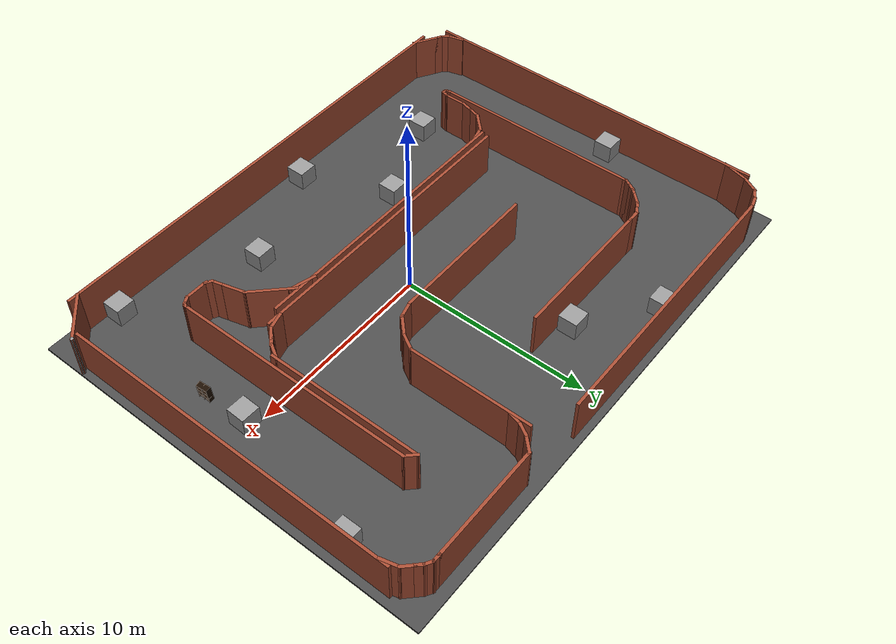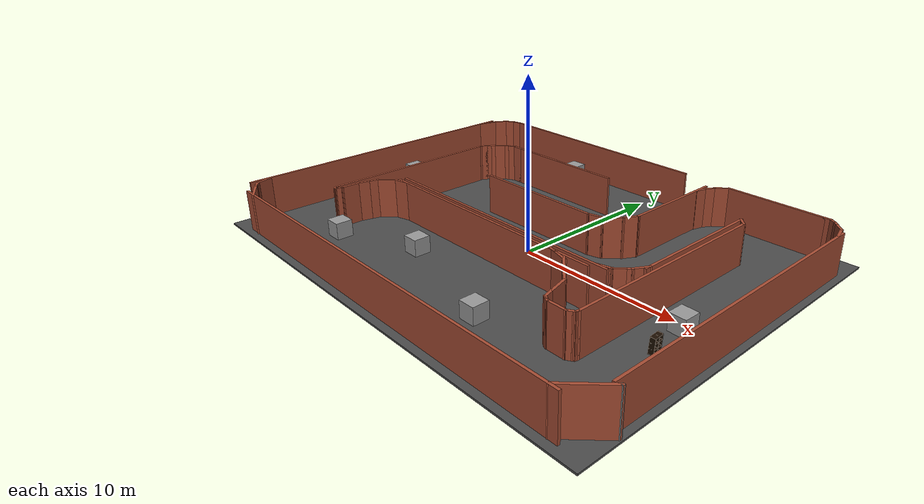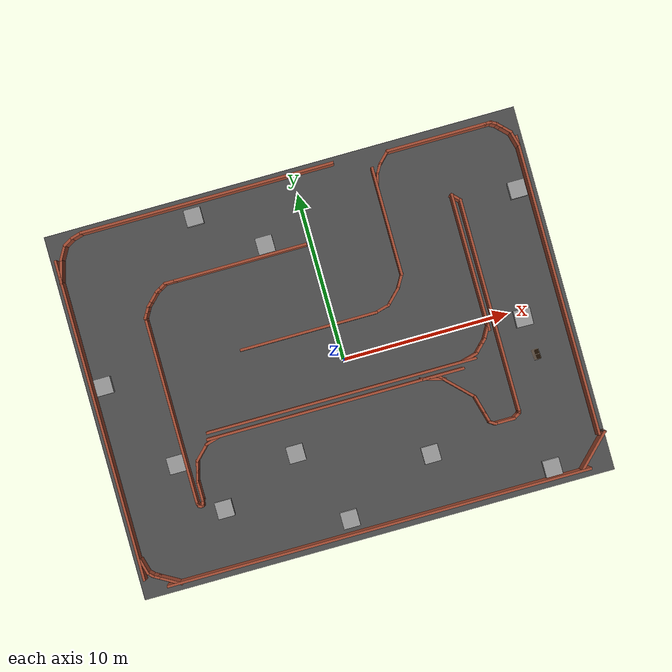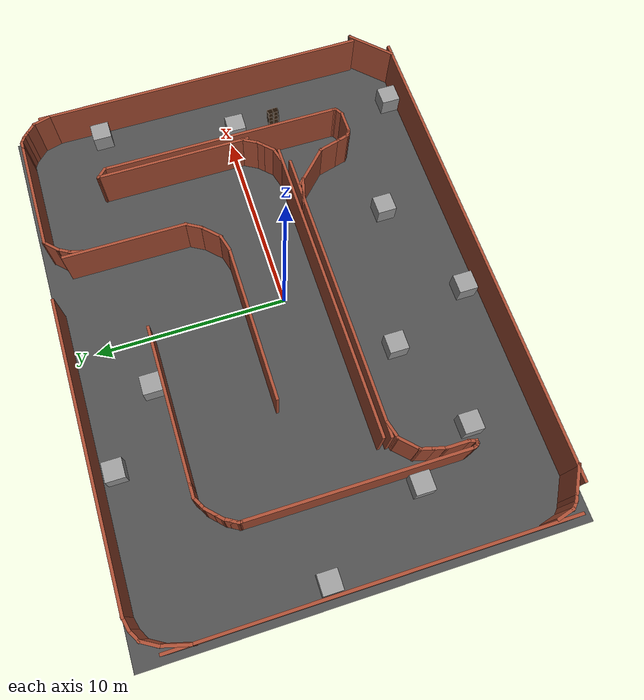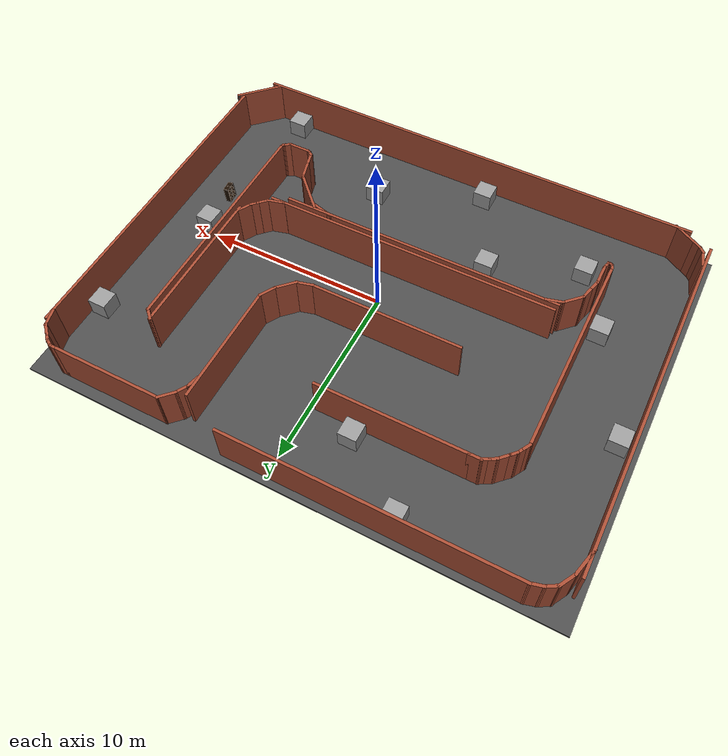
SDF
<sdf version="1.7">
 <world name="default">
  <light name="sun" type="directional">
   <pose>0 0 100 0 -0 0</pose>
   <diffuse>0.8 0.8 0.8 1</diffuse>
   <specular>0.1 0.1 0.1 1</specular>
   <attenuation>
    <range>1000</range>
    <constant>0.9</constant>
    <linear>0.01</linear>
    <quadratic>0.001</quadratic>
   </attenuation>
   <direction>-0.5 0.5 -1</direction>
   <spot><inner_angle>0</inner_angle><outer_angle>0</outer_angle><falloff>0</falloff></spot>
  </light>
  <gravity>0 0 -9.8</gravity>
  <magnetic_field>6e-06 2.3e-05 -4.2e-05</magnetic_field>
  <atmosphere type="adiabatic"/>
  <physics name="default_physics" default="0" type="ode">
   <max_step_size>0.001</max_step_size>
   <real_time_factor>1</real_time_factor>
   <real_time_update_rate>1000</real_time_update_rate>
  </physics>
  <scene><ambient>0.4 0.4 0.4 1</ambient><background>0.7 0.7 0.7 1</background><shadows>1</shadows></scene>
  <spherical_coordinates>
   <surface_model>EARTH_WGS84</surface_model>
   <latitude_deg>0</latitude_deg>
   <longitude_deg>0</longitude_deg>
   <elevation>0</elevation>
   <heading_deg>0</heading_deg>
  </spherical_coordinates>
  <model name="asphalt_plane">
   <static>1</static>
   <link name="link">
    <collision name="collision"><geometry><box><size>28.54 22.04 0.1</size></box></geometry></collision>
    <visual name="visual">
     <cast_shadows>0</cast_shadows>
     <geometry><box><size>28.54 22.04 0.1</size></box></geometry>
     <material>
      <script>
       <uri>model://asphalt_plane/materials/scripts</uri>
       <uri>model://asphalt_plane/materials/textures</uri>
       <name>vrc/asphalt</name>
      </script>
     </material>
    </visual>
   </link>
   <pose>-0.719505 0.551979 0 0 -0 0</pose>
  </model>
  <audio><device>default</device></audio>
  <model name="unit_box_clone">
   <pose>-9.02994 -6.55582 0.55 0 -0 7.1e-05</pose>
   <link name="link">
    <inertial>
     <mass>1</mass>
     <inertia>
      <ixx>0.166667</ixx>
      <ixy>0</ixy>
      <ixz>0</ixz>
      <iyy>0.166667</iyy>
      <iyz>0</iyz>
      <izz>0.166667</izz>
     </inertia>
    </inertial>
    <collision name="collision"><geometry><box><size>1 1 1</size></box></geometry></collision>
    <visual name="visual">
     <geometry><box><size>1 1 1</size></box></geometry>
     <material>
      <script><name>Gazebo/Grey</name><uri>file://media/materials/scripts/gazebo.material</uri></script>
     </material>
    </visual>
   </link>
  </model>
  <model name="unit_box_clone_0">
   <pose>-2.13905 -9.08251 0.55 0 -0 5.4e-05</pose>
   <link name="link">
    <inertial>
     <mass>1</mass>
     <inertia>
      <ixx>0.166667</ixx>
      <ixy>0</ixy>
      <ixz>0</ixz>
      <iyy>0.166667</iyy>
      <iyz>0</iyz>
      <izz>0.166667</izz>
     </inertia>
    </inertial>
    <collision name="collision"><geometry><box><size>1 1 1</size></box></geometry></collision>
    <visual name="visual">
     <geometry><box><size>1 1 1</size></box></geometry>
     <material>
      <script><name>Gazebo/Grey</name><uri>file://media/materials/scripts/gazebo.material</uri></script>
     </material>
    </visual>
   </link>
  </model>
  <model name="unit_box_clone_2">
   <pose>10.7393 -0.480041 0.549995 0 -1e-05 -0.029738</pose>
   <link name="link">
    <inertial>
     <mass>1</mass>
     <inertia>
      <ixx>0.166667</ixx>
      <ixy>0</ixy>
      <ixz>0</ixz>
      <iyy>0.166667</iyy>
      <iyz>0</iyz>
      <izz>0.166667</izz>
     </inertia>
    </inertial>
    <collision name="collision"><geometry><box><size>1 1 1</size></box></geometry></collision>
    <visual name="visual">
     <geometry><box><size>1 1 1</size></box></geometry>
     <material>
      <script><name>Gazebo/Grey</name><uri>file://media/materials/scripts/gazebo.material</uri></script>
     </material>
    </visual>
   </link>
  </model>
  <model name="unit_box_clone_5">
   <pose>10.0295 -9.35501 0.550002 -4e-06 -0 1e-05</pose>
   <link name="link">
    <inertial>
     <mass>1</mass>
     <inertia>
      <ixx>0.166667</ixx>
      <ixy>0</ixy>
      <ixz>0</ixz>
      <iyy>0.166667</iyy>
      <iyz>0</iyz>
      <izz>0.166667</izz>
     </inertia>
    </inertial>
    <collision name="collision"><geometry><box><size>1 1 1</size></box></geometry></collision>
    <visual name="visual">
     <geometry><box><size>1 1 1</size></box></geometry>
     <material>
      <script><name>Gazebo/Grey</name><uri>file://media/materials/scripts/gazebo.material</uri></script>
     </material>
    </visual>
   </link>
  </model>
  <model name="unit_box_clone_9">
   <pose>12.4219 6.83817 0.549999 -2e-06 -0 4.8e-05</pose>
   <link name="link">
    <inertial>
     <mass>1</mass>
     <inertia>
      <ixx>0.166667</ixx>
      <ixy>0</ixy>
      <ixz>0</ixz>
      <iyy>0.166667</iyy>
      <iyz>0</iyz>
      <izz>0.166667</izz>
     </inertia>
    </inertial>
    <collision name="collision"><geometry><box><size>1 1 1</size></box></geometry></collision>
    <visual name="visual">
     <geometry><box><size>1 1 1</size></box></geometry>
     <material>
      <script><name>Gazebo/Grey</name><uri>file://media/materials/scripts/gazebo.material</uri></script>
     </material>
    </visual>
   </link>
  </model>
  <model name="unit_box_clone_11">
   <pose>-2.61681 7.65174 0.55 0 -0 7.2e-05</pose>
   <link name="link">
    <inertial>
     <mass>1</mass>
     <inertia>
      <ixx>0.166667</ixx>
      <ixy>0</ixy>
      <ixz>0</ixz>
      <iyy>0.166667</iyy>
      <iyz>0</iyz>
      <izz>0.166667</izz>
     </inertia>
    </inertial>
    <collision name="collision"><geometry><box><size>1 1 1</size></box></geometry></collision>
    <visual name="visual">
     <geometry><box><size>1 1 1</size></box></geometry>
     <material>
      <script><name>Gazebo/Grey</name><uri>file://media/materials/scripts/gazebo.material</uri></script>
     </material>
    </visual>
   </link>
  </model>
  <model name="unit_box_clone_12">
   <pose>-6.20186 10.3429 0.55 0 -0 7e-05</pose>
   <link name="link">
    <inertial>
     <mass>1</mass>
     <inertia>
      <ixx>0.166667</ixx>
      <ixy>0</ixy>
      <ixz>0</ixz>
      <iyy>0.166667</iyy>
      <iyz>0</iyz>
      <izz>0.166667</izz>
     </inertia>
    </inertial>
    <collision name="collision"><geometry><box><size>1 1 1</size></box></geometry></collision>
    <visual name="visual">
     <geometry><box><size>1 1 1</size></box></geometry>
     <material>
      <script><name>Gazebo/Grey</name><uri>file://media/materials/scripts/gazebo.material</uri></script>
     </material>
    </visual>
   </link>
  </model>
  <model name="unit_box_clone_14">
   <pose>-13.9085 2.23417 0.55 0 -0 5.8e-05</pose>
   <link name="link">
    <inertial>
     <mass>1</mass>
     <inertia>
      <ixx>0.166667</ixx>
      <ixy>0</ixy>
      <ixz>0</ixz>
      <iyy>0.166667</iyy>
      <iyz>0</iyz>
      <izz>0.166667</izz>
     </inertia>
    </inertial>
    <collision name="collision"><geometry><box><size>1 1 1</size></box></geometry></collision>
    <visual name="visual">
     <geometry><box><size>1 1 1</size></box></geometry>
     <material>
      <script><name>Gazebo/Grey</name><uri>file://media/materials/scripts/gazebo.material</uri></script>
     </material>
    </visual>
   </link>
  </model>
  <model name="unit_box_clone_16">
   <pose>-11.0431 -3.28248 0.55 0 -0 6.3e-05</pose>
   <link name="link">
    <inertial>
     <mass>1</mass>
     <inertia>
      <ixx>0.166667</ixx>
      <ixy>0</ixy>
      <ixz>0</ixz>
      <iyy>0.166667</iyy>
      <iyz>0</iyz>
      <izz>0.166667</izz>
     </inertia>
    </inertial>
    <collision name="collision"><geometry><box><size>1 1 1</size></box></geometry></collision>
    <visual name="visual">
     <geometry><box><size>1 1 1</size></box></geometry>
     <material>
      <script><name>Gazebo/Grey</name><uri>file://media/materials/scripts/gazebo.material</uri></script>
     </material>
    </visual>
   </link>
  </model>
  <model name="unit_box_clone_clone">
   <pose>-4.15817 -4.55217 0.55 0 -0 7.4e-05</pose>
   <link name="link">
    <inertial>
     <mass>1</mass>
     <inertia>
      <ixx>0.166667</ixx>
      <ixy>0</ixy>
      <ixz>0</ixz>
      <iyy>0.166667</iyy>
      <iyz>0</iyz>
      <izz>0.166667</izz>
     </inertia>
    </inertial>
    <collision name="collision"><geometry><box><size>1 1 1</size></box></geometry></collision>
    <visual name="visual">
     <geometry><box><size>1 1 1</size></box></geometry>
     <material>
      <script><name>Gazebo/Grey</name><uri>file://media/materials/scripts/gazebo.material</uri></script>
     </material>
    </visual>
   </link>
  </model>
  <model name="unit_box_clone_clone_clone">
   <pose>3.4277 -6.69253 0.549997 -6e-06 -0 0.009997</pose>
   <link name="link">
    <inertial>
     <mass>1</mass>
     <inertia>
      <ixx>0.166667</ixx>
      <ixy>0</ixy>
      <ixz>0</ixz>
      <iyy>0.166667</iyy>
      <iyz>0</iyz>
      <izz>0.166667</izz>
     </inertia>
    </inertial>
    <collision name="collision"><geometry><box><size>1 1 1</size></box></geometry></collision>
    <visual name="visual">
     <geometry><box><size>1 1 1</size></box></geometry>
     <material>
      <script><name>Gazebo/Grey</name><uri>file://media/materials/scripts/gazebo.material</uri></script>
     </material>
    </visual>
   </link>
  </model>
  <model name="Untitled_0">
   <pose>2.17229 1.41798 0 0 -0 0</pose>
   <link name="Wall_100">
    <collision name="Wall_100_Collision">
     <geometry><box><size>0.5 0.15 2.5</size></box></geometry>
     <pose>0 0 1.25 0 -0 0</pose>
    </collision>
    <visual name="Wall_100_Visual">
     <pose>0 0 1.25 0 -0 0</pose>
     <geometry><box><size>0.5 0.15 2.5</size></box></geometry>
     <material>
      <script><uri>file://media/materials/scripts/gazebo.material</uri><name>Gazebo/Bricks</name></script>
      <ambient>1 1 1 1</ambient>
     </material>
     <meta><layer>0</layer></meta>
    </visual>
    <pose>9.51531 9.51082 0 0 -0 0</pose>
   </link>
   <link name="Wall_101">
    <collision name="Wall_101_Collision">
     <geometry><box><size>0.5 0.15 2.5</size></box></geometry>
     <pose>0 0 1.25 0 -0 0</pose>
    </collision>
    <visual name="Wall_101_Visual">
     <pose>0 0 1.25 0 -0 0</pose>
     <geometry><box><size>0.5 0.15 2.5</size></box></geometry>
     <material>
      <script><uri>file://media/materials/scripts/gazebo.material</uri><name>Gazebo/Bricks</name></script>
      <ambient>1 1 1 1</ambient>
     </material>
     <meta><layer>0</layer></meta>
    </visual>
    <pose>9.84186 9.42332 0 0 -0 -0.523599</pose>
   </link>
   <link name="Wall_102">
    <collision name="Wall_102_Collision">
     <geometry><box><size>0.5 0.15 2.5</size></box></geometry>
     <pose>0 0 1.25 0 -0 0</pose>
    </collision>
    <visual name="Wall_102_Visual">
     <pose>0 0 1.25 0 -0 0</pose>
     <geometry><box><size>0.5 0.15 2.5</size></box></geometry>
     <material>
      <script><uri>file://media/materials/scripts/gazebo.material</uri><name>Gazebo/Bricks</name></script>
      <ambient>1 1 1 1</ambient>
     </material>
     <meta><layer>0</layer></meta>
    </visual>
    <pose>10.1172 9.21208 0 0 -0 -0.785398</pose>
   </link>
   <link name="Wall_103">
    <collision name="Wall_103_Collision">
     <geometry><box><size>0.75 0.15 2.5</size></box></geometry>
     <pose>0 0 1.25 0 -0 0</pose>
    </collision>
    <visual name="Wall_103_Visual">
     <pose>0 0 1.25 0 -0 0</pose>
     <geometry><box><size>0.75 0.15 2.5</size></box></geometry>
     <material>
      <script><uri>file://media/materials/scripts/gazebo.material</uri><name>Gazebo/Bricks</name></script>
      <ambient>1 1 1 1</ambient>
     </material>
     <meta><layer>0</layer></meta>
    </visual>
    <pose>10.453 8.8762 0 0 -0 -0.785398</pose>
   </link>
   <link name="Wall_104">
    <collision name="Wall_104_Collision">
     <geometry><box><size>1 0.15 2.5</size></box></geometry>
     <pose>0 0 1.25 0 -0 0</pose>
    </collision>
    <visual name="Wall_104_Visual">
     <pose>0 0 1.25 0 -0 0</pose>
     <geometry><box><size>1 0.15 2.5</size></box></geometry>
     <material>
      <script><uri>file://media/materials/scripts/gazebo.material</uri><name>Gazebo/Bricks</name></script>
      <ambient>1 1 1 1</ambient>
     </material>
     <meta><layer>0</layer></meta>
    </visual>
    <pose>10.7752 8.25355 0 0 -0 -1.309</pose>
   </link>
   <link name="Wall_73">
    <collision name="Wall_73_Collision">
     <geometry><box><size>16.25 0.15 2.5</size></box></geometry>
     <pose>0 0 1.25 0 -0 0</pose>
    </collision>
    <visual name="Wall_73_Visual">
     <pose>0 0 1.25 0 -0 0</pose>
     <geometry><box><size>16.25 0.15 2.5</size></box></geometry>
     <material>
      <script><uri>file://media/materials/scripts/gazebo.material</uri><name>Gazebo/Bricks</name></script>
      <ambient>1 1 1 1</ambient>
     </material>
     <meta><layer>0</layer></meta>
    </visual>
    <pose>-2.86052 -3.41043 0 0 -0 0</pose>
   </link>
   <link name="Wall_76">
    <collision name="Wall_76_Collision">
     <geometry><box><size>8.25 0.15 2.5</size></box></geometry>
     <pose>0 0 1.25 0 -0 0</pose>
    </collision>
    <visual name="Wall_76_Visual">
     <pose>0 0 1.25 0 -0 0</pose>
     <geometry><box><size>8.25 0.15 2.5</size></box></geometry>
     <material>
      <script><uri>file://media/materials/scripts/gazebo.material</uri><name>Gazebo/Bricks</name></script>
      <ambient>1 1 1 1</ambient>
     </material>
     <meta><layer>0</layer></meta>
    </visual>
    <pose>-3.69073 0.69136 0 0 -0 0</pose>
   </link>
   <link name="Wall_78">
    <collision name="Wall_78_Collision">
     <geometry><box><size>1 0.15 2.5</size></box></geometry>
     <pose>0 0 1.25 0 -0 0</pose>
    </collision>
    <visual name="Wall_78_Visual">
     <pose>0 0 1.25 0 -0 0</pose>
     <geometry><box><size>1 0.15 2.5</size></box></geometry>
     <material>
      <script><uri>file://media/materials/scripts/gazebo.material</uri><name>Gazebo/Bricks</name></script>
      <ambient>1 1 1 1</ambient>
     </material>
     <meta><layer>0</layer></meta>
    </visual>
    <pose>0.769793 0.801358 0 0 -0 0.261799</pose>
   </link>
   <link name="Wall_79">
    <collision name="Wall_79_Collision">
     <geometry><box><size>1.25 0.15 2.5</size></box></geometry>
     <pose>0 0 1.25 0 -0 0</pose>
    </collision>
    <visual name="Wall_79_Visual">
     <pose>0 0 1.25 0 -0 0</pose>
     <geometry><box><size>1.25 0.15 2.5</size></box></geometry>
     <material>
      <script><uri>file://media/materials/scripts/gazebo.material</uri><name>Gazebo/Bricks</name></script>
      <ambient>1 1 1 1</ambient>
     </material>
     <meta><layer>0</layer></meta>
    </visual>
    <pose>1.56922 1.30027 0 0 -0 0.785398</pose>
   </link>
   <link name="Wall_80">
    <collision name="Wall_80_Collision">
     <geometry><box><size>1 0.15 2.5</size></box></geometry>
     <pose>0 0 1.25 0 -0 0</pose>
    </collision>
    <visual name="Wall_80_Visual">
     <pose>0 0 1.25 0 -0 0</pose>
     <geometry><box><size>1 0.15 2.5</size></box></geometry>
     <material>
      <script><uri>file://media/materials/scripts/gazebo.material</uri><name>Gazebo/Bricks</name></script>
      <ambient>1 1 1 1</ambient>
     </material>
     <meta><layer>0</layer></meta>
    </visual>
    <pose>2.17063 2.05723 0 0 -0 1.0472</pose>
   </link>
   <link name="Wall_81">
    <collision name="Wall_81_Collision">
     <geometry><box><size>6.5 0.15 2.5</size></box></geometry>
     <pose>0 0 1.25 0 -0 0</pose>
    </collision>
    <visual name="Wall_81_Visual">
     <pose>0 0 1.25 0 -0 0</pose>
     <geometry><box><size>6.5 0.15 2.5</size></box></geometry>
     <material>
      <script><uri>file://media/materials/scripts/gazebo.material</uri><name>Gazebo/Bricks</name></script>
      <ambient>1 1 1 1</ambient>
     </material>
     <meta><layer>0</layer></meta>
    </visual>
    <pose>2.38313 5.6003 0 0 -0 1.5708</pose>
   </link>
   <link name="Wall_83">
    <collision name="Wall_83_Collision">
     <geometry><box><size>8.25 0.15 2.5</size></box></geometry>
     <pose>0 0 1.25 0 -0 0</pose>
    </collision>
    <visual name="Wall_83_Visual">
     <pose>0 0 1.25 0 -0 0</pose>
     <geometry><box><size>8.25 0.15 2.5</size></box></geometry>
     <material>
      <script><uri>file://media/materials/scripts/gazebo.material</uri><name>Gazebo/Bricks</name></script>
      <ambient>1 1 1 1</ambient>
     </material>
     <meta><layer>0</layer></meta>
    </visual>
    <pose>6.40756 2.01956 0 0 -0 -1.5708</pose>
   </link>
   <link name="Wall_87">
    <collision name="Wall_87_Collision">
     <geometry><box><size>1 0.15 2.5</size></box></geometry>
     <pose>0 0 1.25 0 -0 0</pose>
    </collision>
    <visual name="Wall_87_Visual">
     <pose>0 0 1.25 0 -0 0</pose>
     <geometry><box><size>1 0.15 2.5</size></box></geometry>
     <material>
      <script><uri>file://media/materials/scripts/gazebo.material</uri><name>Gazebo/Bricks</name></script>
      <ambient>1 1 1 1</ambient>
     </material>
     <meta><layer>0</layer></meta>
    </visual>
    <pose>4.90949 -3.27284 0 0 -0 0.261799</pose>
   </link>
   <link name="Wall_88">
    <collision name="Wall_88_Collision">
     <geometry><box><size>0.75 0.15 2.5</size></box></geometry>
     <pose>0 0 1.25 0 -0 0</pose>
    </collision>
    <visual name="Wall_88_Visual">
     <pose>0 0 1.25 0 -0 0</pose>
     <geometry><box><size>0.75 0.15 2.5</size></box></geometry>
     <material>
      <script><uri>file://media/materials/scripts/gazebo.material</uri><name>Gazebo/Bricks</name></script>
      <ambient>1 1 1 1</ambient>
     </material>
     <meta><layer>0</layer></meta>
    </visual>
    <pose>5.53214 -2.95071 0 0 -0 0.785398</pose>
   </link>
   <link name="Wall_89">
    <collision name="Wall_89_Collision">
     <geometry><box><size>0.5 0.15 2.5</size></box></geometry>
     <pose>0 0 1.25 0 -0 0</pose>
    </collision>
    <visual name="Wall_89_Visual">
     <pose>0 0 1.25 0 -0 0</pose>
     <geometry><box><size>0.5 0.15 2.5</size></box></geometry>
     <material>
      <script><uri>file://media/materials/scripts/gazebo.material</uri><name>Gazebo/Bricks</name></script>
      <ambient>1 1 1 1</ambient>
     </material>
     <meta><layer>0</layer></meta>
    </visual>
    <pose>5.86801 -2.61483 0 0 -0 0.785398</pose>
   </link>
   <link name="Wall_90">
    <collision name="Wall_90_Collision">
     <geometry><box><size>1 0.15 2.5</size></box></geometry>
     <pose>0 0 1.25 0 -0 0</pose>
    </collision>
    <visual name="Wall_90_Visual">
     <pose>0 0 1.25 0 -0 0</pose>
     <geometry><box><size>1 0.15 2.5</size></box></geometry>
     <material>
      <script><uri>file://media/materials/scripts/gazebo.material</uri><name>Gazebo/Bricks</name></script>
      <ambient>1 1 1 1</ambient>
     </material>
     <meta><layer>0</layer></meta>
    </visual>
    <pose>6.20426 -2.12303 0 0 -0 1.0472</pose>
   </link>
   <link name="Wall_92">
    <collision name="Wall_92_Collision">
     <geometry><box><size>18 0.15 2.5</size></box></geometry>
     <pose>0 0 1.2495 0 -0 0</pose>
    </collision>
    <visual name="Wall_92_Visual">
     <pose>0 0 1.2495 0 -0 0</pose>
     <geometry><box><size>18 0.15 2.5</size></box></geometry>
     <material>
      <script><uri>file://media/materials/scripts/gazebo.material</uri><name>Gazebo/Bricks</name></script>
      <ambient>1 1 1 1</ambient>
     </material>
     <meta><layer>0</layer></meta>
    </visual>
    <pose>10.9105 -0.616886 0 0 -0 -1.5708</pose>
   </link>
   <link name="Wall_95">
    <collision name="Wall_95_Collision">
     <geometry><box><size>0.75 0.15 2.5</size></box></geometry>
     <pose>0 0 1.25 0 -0 0</pose>
    </collision>
    <visual name="Wall_95_Visual">
     <pose>0 0 1.25 0 -0 0</pose>
     <geometry><box><size>0.75 0.15 2.5</size></box></geometry>
     <material>
      <script><uri>file://media/materials/scripts/gazebo.material</uri><name>Gazebo/Bricks</name></script>
      <ambient>1 1 1 1</ambient>
     </material>
     <meta><layer>0</layer></meta>
    </visual>
    <pose>2.51162 8.10039 0 0 -0 1.309</pose>
   </link>
   <link name="Wall_96">
    <collision name="Wall_96_Collision">
     <geometry><box><size>0.75 0.15 2.5</size></box></geometry>
     <pose>0 0 1.25 0 -0 0</pose>
    </collision>
    <visual name="Wall_96_Visual">
     <pose>0 0 1.25 0 -0 0</pose>
     <geometry><box><size>0.75 0.15 2.5</size></box></geometry>
     <material>
      <script><uri>file://media/materials/scripts/gazebo.material</uri><name>Gazebo/Bricks</name></script>
      <ambient>1 1 1 1</ambient>
     </material>
     <meta><layer>0</layer></meta>
    </visual>
    <pose>2.73927 8.64997 0 0 -0 1.0472</pose>
   </link>
   <link name="Wall_98">
    <collision name="Wall_98_Collision">
     <geometry><box><size>1 0.15 2.5</size></box></geometry>
     <pose>0 0 1.25 0 -0 0</pose>
    </collision>
    <visual name="Wall_98_Visual">
     <pose>0 0 1.25 0 -0 0</pose>
     <geometry><box><size>1 0.15 2.5</size></box></geometry>
     <material>
      <script><uri>file://media/materials/scripts/gazebo.material</uri><name>Gazebo/Bricks</name></script>
      <ambient>1 1 1 1</ambient>
     </material>
     <meta><layer>0</layer></meta>
    </visual>
    <pose>3.18979 9.2103 0 0 -0 0.785398</pose>
   </link>
   <link name="Wall_99">
    <collision name="Wall_99_Collision">
     <geometry><box><size>6 0.15 2.5</size></box></geometry>
     <pose>0 0 1.25 0 -0 0</pose>
    </collision>
    <visual name="Wall_99_Visual">
     <pose>0 0 1.25 0 -0 0</pose>
     <geometry><box><size>6 0.15 2.5</size></box></geometry>
     <material>
      <script><uri>file://media/materials/scripts/gazebo.material</uri><name>Gazebo/Bricks</name></script>
      <ambient>1 1 1 1</ambient>
     </material>
     <meta><layer>0</layer></meta>
    </visual>
    <pose>6.41531 9.51082 0 0 -0 0</pose>
   </link>
   <static>1</static>
  </model>
  <model name="Untitled">
   <pose>-1.155 -1.2225 0 0 -0 0</pose>
   <link name="Wall_0">
    <collision name="Wall_0_Collision">
     <geometry><box><size>15.5 0.15 2.5</size></box></geometry>
     <pose>0 0 1.25 0 -0 0</pose>
    </collision>
    <visual name="Wall_0_Visual">
     <pose>0 0 1.25 0 -0 0</pose>
     <geometry><box><size>15.5 0.15 2.5</size></box></geometry>
     <material>
      <script><uri>file://media/materials/scripts/gazebo.material</uri><name>Gazebo/Bricks</name></script>
      <ambient>1 1 1 1</ambient>
     </material>
     <meta><layer>0</layer></meta>
    </visual>
    <pose>-0 -1.1475 0 0 -0 0</pose>
   </link>
   <static>1</static>
  </model>
  <model name="Untitled_1">
   <pose>4.54374 0.998214 0 0 -0 0</pose>
   <link name="Wall_3">
    <collision name="Wall_3_Collision">
     <geometry><box><size>12.75 0.15 2.5</size></box></geometry>
     <pose>0 0 1.25 0 -0 0</pose>
    </collision>
    <visual name="Wall_3_Visual">
     <pose>0 0 1.25 0 -0 0</pose>
     <geometry><box><size>12.75 0.15 2.5</size></box></geometry>
     <material>
      <script><uri>file://media/materials/scripts/gazebo.material</uri><name>Gazebo/Bricks</name></script>
      <ambient>1 1 1 1</ambient>
     </material>
     <meta><layer>0</layer></meta>
    </visual>
    <pose>4.43768 -0.227665 0 0 -0 1.5708</pose>
   </link>
   <link name="Wall_5">
    <collision name="Wall_5_Collision">
     <geometry><box><size>0.75 0.15 2.5</size></box></geometry>
     <pose>0 0 1.25 0 -0 0</pose>
    </collision>
    <visual name="Wall_5_Visual">
     <pose>0 0 1.25 0 -0 0</pose>
     <geometry><box><size>0.75 0.15 2.5</size></box></geometry>
     <material>
      <script><uri>file://media/materials/scripts/gazebo.material</uri><name>Gazebo/Bricks</name></script>
      <ambient>1 1 1 1</ambient>
     </material>
     <meta><layer>0</layer></meta>
    </visual>
    <pose>4.22555 6.28447 0 0 -0 2.35619</pose>
   </link>
   <static>1</static>
  </model>
  <model name="6_Cube_StorageE">
   <link name="Wall_0">
    <pose>0 0 0.01 0 -0 0</pose>
    <inertial>
     <mass>1.6201</mass>
     <inertia><ixx>0.0119</ixx><iyy>0.0631</iyy><izz>0.0513</izz><ixy>0</ixy><ixz>0</ixz><iyz>0</iyz></inertia>
    </inertial>
    <collision name="Wall_0_Collision"><geometry><box><size>0.616 0.296 0.02</size></box></geometry></collision>
    <visual name="Wall_0_Visual">
     <geometry><box><size>0.616 0.296 0.02</size></box></geometry>
     <material>
      <script><uri>file://media/materials/scripts/gazebo.material</uri><name>Gazebo/Grey</name></script>
      <ambient>0.105882 0.0509804 0 1</ambient>
     </material>
    </visual>
   </link>
   <joint name="0_2" type="fixed">
    <pose>-0.308 0 0 0 -0 0</pose>
    <parent>Wall_2</parent>
    <child>Wall_0</child>
    <axis><xyz>1 0 0</xyz><limit><lower>-1e+16</lower><upper>1e+16</upper></limit></axis>
   </joint>
   <joint name="0_12" type="fixed">
    <parent>Wall_12</parent>
    <child>Wall_0</child>
    <axis><xyz>0 0 1</xyz><limit><lower>-1e+16</lower><upper>1e+16</upper></limit></axis>
   </joint>
   <joint name="0_4" type="fixed">
    <pose>0.308 0 0 0 -0 0</pose>
    <parent>Wall_4</parent>
    <child>Wall_0</child>
    <axis><xyz>1 0 0</xyz><limit><lower>-1e+16</lower><upper>1e+16</upper></limit></axis>
   </joint>
   <link name="Wall_10">
    <pose>0 0 0.61 0 -0 0</pose>
    <inertial>
     <mass>1.6201</mass>
     <inertia><ixx>0.0119</ixx><iyy>0.0631</iyy><izz>0.0513</izz><ixy>0</ixy><ixz>0</ixz><iyz>0</iyz></inertia>
    </inertial>
    <collision name="Wall_10_Collision"><geometry><box><size>0.616 0.296 0.02</size></box></geometry></collision>
    <visual name="Wall_10_Visual">
     <geometry><box><size>0.616 0.296 0.02</size></box></geometry>
     <material>
      <script><uri>file://media/materials/scripts/gazebo.material</uri><name>Gazebo/Grey</name></script>
      <ambient>0.105882 0.0509804 0 1</ambient>
     </material>
    </visual>
   </link>
   <joint name="10_2" type="fixed">
    <pose>-0.308 0 0 0 -0 0</pose>
    <parent>Wall_2</parent>
    <child>Wall_10</child>
    <axis><xyz>1 0 0</xyz><limit><lower>-1e+16</lower><upper>1e+16</upper></limit></axis>
   </joint>
   <joint name="10_12" type="fixed">
    <parent>Wall_12</parent>
    <child>Wall_10</child>
    <axis><xyz>0 0 1</xyz><limit><lower>-1e+16</lower><upper>1e+16</upper></limit></axis>
   </joint>
   <joint name="10_4" type="fixed">
    <pose>0.308 0 0 0 -0 0</pose>
    <parent>Wall_4</parent>
    <child>Wall_10</child>
    <axis><xyz>1 0 0</xyz><limit><lower>-1e+16</lower><upper>1e+16</upper></limit></axis>
   </joint>
   <link name="Wall_12">
    <pose>0 0 0.4575 0 -0 0</pose>
    <inertial>
     <mass>2.4065</mass>
     <inertia><ixx>0.0177</ixx><iyy>0.1855</iyy><izz>0.168</izz><ixy>0</ixy><ixz>0</ixz><iyz>0</iyz></inertia>
    </inertial>
    <collision name="Wall_12_Collision"><geometry><box><size>0.02 0.296 0.915</size></box></geometry></collision>
    <visual name="Wall_12_Visual">
     <geometry><box><size>0.02 0.296 0.915</size></box></geometry>
     <material>
      <script><uri>file://media/materials/scripts/gazebo.material</uri><name>Gazebo/Grey</name></script>
      <ambient>0.105882 0.0509804 0 1</ambient>
     </material>
    </visual>
   </link>
   <link name="Wall_2">
    <pose>-0.298 0 0.4575 0 -0 0</pose>
    <inertial>
     <mass>2.4065</mass>
     <inertia><ixx>0.0177</ixx><iyy>0.1855</iyy><izz>0.168</izz><ixy>0</ixy><ixz>0</ixz><iyz>0</iyz></inertia>
    </inertial>
    <collision name="Wall_2_Collision"><geometry><box><size>0.02 0.296 0.915</size></box></geometry></collision>
    <visual name="Wall_2_Visual">
     <geometry><box><size>0.02 0.296 0.915</size></box></geometry>
     <material>
      <script><uri>file://media/materials/scripts/gazebo.material</uri><name>Gazebo/Grey</name></script>
      <ambient>0.105882 0.0509804 0 1</ambient>
     </material>
    </visual>
   </link>
   <link name="Wall_4">
    <pose>0.298 0 0.4575 0 -0 0</pose>
    <inertial>
     <mass>2.4065</mass>
     <inertia><ixx>0.0177</ixx><iyy>0.1855</iyy><izz>0.168</izz><ixy>0</ixy><ixz>0</ixz><iyz>0</iyz></inertia>
    </inertial>
    <collision name="Wall_4_Collision"><geometry><box><size>0.02 0.296 0.915</size></box></geometry></collision>
    <visual name="Wall_4_Visual">
     <geometry><box><size>0.02 0.296 0.915</size></box></geometry>
     <material>
      <script><uri>file://media/materials/scripts/gazebo.material</uri><name>Gazebo/Grey</name></script>
      <ambient>0.105882 0.0509804 0 1</ambient>
     </material>
    </visual>
   </link>
   <link name="Wall_6">
    <pose>0 0 0.905 0 -0 0</pose>
    <inertial>
     <mass>1.6201</mass>
     <inertia><ixx>0.0119</ixx><iyy>0.0631</iyy><izz>0.0513</izz><ixy>0</ixy><ixz>0</ixz><iyz>0</iyz></inertia>
    </inertial>
    <collision name="Wall_6_Collision"><geometry><box><size>0.616 0.296 0.02</size></box></geometry></collision>
    <visual name="Wall_6_Visual">
     <geometry><box><size>0.616 0.296 0.02</size></box></geometry>
     <material>
      <script><uri>file://media/materials/scripts/gazebo.material</uri><name>Gazebo/Grey</name></script>
      <ambient>0.105882 0.0509804 0 1</ambient>
     </material>
    </visual>
   </link>
   <joint name="6_2" type="fixed">
    <pose>-0.308 0 0 0 -0 0</pose>
    <parent>Wall_2</parent>
    <child>Wall_6</child>
    <axis><xyz>2 0 0</xyz><limit><lower>-1e+16</lower><upper>1e+16</upper></limit></axis>
   </joint>
   <joint name="6_12" type="fixed">
    <parent>Wall_12</parent>
    <child>Wall_6</child>
    <axis><xyz>0 0 1</xyz><limit><lower>-1e+16</lower><upper>1e+16</upper></limit></axis>
   </joint>
   <joint name="6_4" type="fixed">
    <pose>0.308 0 0 0 -0 0</pose>
    <parent>Wall_4</parent>
    <child>Wall_6</child>
    <axis><xyz>1 0 0</xyz><limit><lower>-1e+16</lower><upper>1e+16</upper></limit></axis>
   </joint>
   <link name="Wall_8">
    <pose>0 0 0.305 0 -0 0</pose>
    <inertial>
     <mass>1.6201</mass>
     <inertia><ixx>0.0119</ixx><iyy>0.0631</iyy><izz>0.0513</izz><ixy>0</ixy><ixz>0</ixz><iyz>0</iyz></inertia>
    </inertial>
    <collision name="Wall_8_Collision"><geometry><box><size>0.616 0.296 0.02</size></box></geometry></collision>
    <visual name="Wall_8_Visual">
     <geometry><box><size>0.616 0.296 0.02</size></box></geometry>
     <material>
      <script><uri>file://media/materials/scripts/gazebo.material</uri><name>Gazebo/Grey</name></script>
      <ambient>0.105882 0.0509804 0 1</ambient>
     </material>
    </visual>
   </link>
   <joint name="8_2" type="fixed">
    <pose>-0.308 0 0 0 -0 0</pose>
    <parent>Wall_2</parent>
    <child>Wall_8</child>
    <axis><xyz>1 0 0</xyz><limit><lower>-1e+16</lower><upper>1e+16</upper></limit></axis>
   </joint>
   <joint name="8_12" type="fixed">
    <parent>Wall_12</parent>
    <child>Wall_8</child>
    <axis><xyz>0 0 1</xyz><limit><lower>-1e+16</lower><upper>1e+16</upper></limit></axis>
   </joint>
   <joint name="8_4" type="fixed">
    <pose>0.308 0 0 0 -0 0</pose>
    <parent>Wall_4</parent>
    <child>Wall_8</child>
    <axis><xyz>1 0 0</xyz><limit><lower>-1e+16</lower><upper>1e+16</upper></limit></axis>
   </joint>
   <static>1</static>
   <pose>10.882 -2.74407 0.037123 0.078821 -0.005852 1.64475</pose>
  </model>
  <model name="Untitled_2">
   <pose>0.07367 -5.01823 0 0 -0 0</pose>
   <link name="Wall_0">
    <collision name="Wall_0_Collision">
     <geometry><box><size>25.5 0.15 2.5</size></box></geometry>
     <pose>0 0 1.25 0 -0 0</pose>
    </collision>
    <visual name="Wall_0_Visual">
     <pose>0 0 1.25 0 -0 0</pose>
     <geometry><box><size>25.5 0.15 2.5</size></box></geometry>
     <material>
      <script><uri>file://media/materials/scripts/gazebo.material</uri><name>Gazebo/Bricks</name></script>
      <ambient>1 1 1 1</ambient>
     </material>
     <meta><layer>0</layer></meta>
    </visual>
    <pose>-0.693877 -4.91181 0 0 -0 0</pose>
   </link>
   <link name="Wall_11">
    <collision name="Wall_11_Collision">
     <geometry><box><size>0.5 0.15 2.5</size></box></geometry>
     <pose>0 0 1.25 0 -0 0</pose>
    </collision>
    <visual name="Wall_11_Visual">
     <pose>0 0 1.25 0 -0 0</pose>
     <geometry><box><size>0.5 0.15 2.5</size></box></geometry>
     <material>
      <script><uri>file://media/materials/scripts/gazebo.material</uri><name>Gazebo/Bricks</name></script>
      <ambient>1 1 1 1</ambient>
     </material>
     <meta><layer>0</layer></meta>
    </visual>
    <pose>7.25302 -0.843593 0 0 -0 2.61799</pose>
   </link>
   <link name="Wall_12">
    <collision name="Wall_12_Collision">
     <geometry><box><size>0.75 0.15 2.5</size></box></geometry>
     <pose>0 0 1.25 0 -0 0</pose>
    </collision>
    <visual name="Wall_12_Visual">
     <pose>0 0 1.25 0 -0 0</pose>
     <geometry><box><size>0.75 0.15 2.5</size></box></geometry>
     <material>
      <script><uri>file://media/materials/scripts/gazebo.material</uri><name>Gazebo/Bricks</name></script>
      <ambient>1 1 1 1</ambient>
     </material>
     <meta><layer>0</layer></meta>
    </visual>
    <pose>7.02381 -0.466315 0 0 -0 1.8326</pose>
   </link>
   <link name="Wall_13">
    <collision name="Wall_13_Collision">
     <geometry><box><size>1.25 0.15 2.5</size></box></geometry>
     <pose>0 0 1.25 0 -0 0</pose>
    </collision>
    <visual name="Wall_13_Visual">
     <pose>0 0 1.25 0 -0 0</pose>
     <geometry><box><size>1.25 0.15 2.5</size></box></geometry>
     <material>
      <script><uri>file://media/materials/scripts/gazebo.material</uri><name>Gazebo/Bricks</name></script>
      <ambient>1 1 1 1</ambient>
     </material>
     <meta><layer>0</layer></meta>
    </visual>
    <pose>6.80382 0.354722 0 0 -0 1.8326</pose>
   </link>
   <link name="Wall_14">
    <collision name="Wall_14_Collision">
     <geometry><box><size>2.5 0.15 2.5</size></box></geometry>
     <pose>0 0 1.25 0 -0 0</pose>
    </collision>
    <visual name="Wall_14_Visual">
     <pose>0 0 1.25 0 -0 0</pose>
     <geometry><box><size>2.5 0.15 2.5</size></box></geometry>
     <material>
      <script><uri>file://media/materials/scripts/gazebo.material</uri><name>Gazebo/Bricks</name></script>
      <ambient>1 1 1 1</ambient>
     </material>
     <meta><layer>0</layer></meta>
    </visual>
    <pose>5.83062 1.71683 0 0 -0 2.35619</pose>
   </link>
   <link name="Wall_16">
    <collision name="Wall_16_Collision">
     <geometry><box><size>1.5 0.15 2.5</size></box></geometry>
     <pose>0 0 1.25 0 -0 0</pose>
    </collision>
    <visual name="Wall_16_Visual">
     <pose>0 0 1.25 0 -0 0</pose>
     <geometry><box><size>1.5 0.15 2.5</size></box></geometry>
     <material>
      <script><uri>file://media/materials/scripts/gazebo.material</uri><name>Gazebo/Bricks</name></script>
      <ambient>1 1 1 1</ambient>
     </material>
     <meta><layer>0</layer></meta>
    </visual>
    <pose>4.60207 2.52555 0 0 -0 2.87979</pose>
   </link>
   <link name="Wall_19">
    <collision name="Wall_19_Collision">
     <geometry><box><size>2.75 0.15 2.5</size></box></geometry>
     <pose>0 0 1.25 0 -0 0</pose>
    </collision>
    <visual name="Wall_19_Visual">
     <pose>0 0 1.25 0 -0 0</pose>
     <geometry><box><size>2.75 0.15 2.5</size></box></geometry>
     <material>
      <script><uri>file://media/materials/scripts/gazebo.material</uri><name>Gazebo/Bricks</name></script>
      <ambient>1 1 1 1</ambient>
     </material>
     <meta><layer>0</layer></meta>
    </visual>
    <pose>12.4186 -3.99292 0 0 -0 0.785398</pose>
   </link>
   <link name="Wall_20">
    <collision name="Wall_20_Collision">
     <geometry><box><size>0.15 0.15 2.5</size></box></geometry>
     <pose>0 0 1.25 0 -0 0</pose>
    </collision>
    <visual name="Wall_20_Visual">
     <pose>0 0 1.25 0 -0 0</pose>
     <geometry><box><size>0.15 0.15 2.5</size></box></geometry>
     <material>
      <script><uri>file://media/materials/scripts/gazebo.material</uri><name>Gazebo/Grey</name></script>
      <ambient>1 1 1 1</ambient>
     </material>
     <meta><layer>0</layer></meta>
    </visual>
    <pose>13.3378 -3.07368 0 0 -0 0</pose>
   </link>
   <link name="Wall_3">
    <collision name="Wall_3_Collision">
     <geometry><box><size>1.25 0.15 2.5</size></box></geometry>
     <pose>0 0 1.25 0 -0 0</pose>
    </collision>
    <visual name="Wall_3_Visual">
     <pose>0 0 1.25 0 -0 0</pose>
     <geometry><box><size>1.25 0.15 2.5</size></box></geometry>
     <material>
      <script><uri>file://media/materials/scripts/gazebo.material</uri><name>Gazebo/Bricks</name></script>
      <ambient>1 1 1 1</ambient>
     </material>
     <meta><layer>0</layer></meta>
    </visual>
    <pose>7.95457 -0.931093 0 0 -0 3.14159</pose>
   </link>
   <link name="Wall_5">
    <collision name="Wall_5_Collision">
     <geometry><box><size>0.5 0.15 2.5</size></box></geometry>
     <pose>0 0 1.25 0 -0 0</pose>
    </collision>
    <visual name="Wall_5_Visual">
     <pose>0 0 1.25 0 -0 0</pose>
     <geometry><box><size>0.5 0.15 2.5</size></box></geometry>
     <material>
      <script><uri>file://media/materials/scripts/gazebo.material</uri><name>Gazebo/Bricks</name></script>
      <ambient>1 1 1 1</ambient>
     </material>
     <meta><layer>0</layer></meta>
    </visual>
    <pose>8.65612 -0.843593 0 0 -0 0.523599</pose>
   </link>
   <link name="Wall_6">
    <collision name="Wall_6_Collision">
     <geometry><box><size>0.25 0.15 2.5</size></box></geometry>
     <pose>0 0 1.25 0 -0 0</pose>
    </collision>
    <visual name="Wall_6_Visual">
     <pose>0 0 1.25 0 -0 0</pose>
     <geometry><box><size>0.25 0.15 2.5</size></box></geometry>
     <material>
      <script><uri>file://media/materials/scripts/gazebo.material</uri><name>Gazebo/Bricks</name></script>
      <ambient>1 1 1 1</ambient>
     </material>
     <meta><layer>0</layer></meta>
    </visual>
    <pose>8.84303 -0.720738 0 0 -0 0.785398</pose>
   </link>
   <link name="Wall_7">
    <collision name="Wall_7_Collision">
     <geometry><box><size>0.25 0.15 2.5</size></box></geometry>
     <pose>0 0 1.25 0 -0 0</pose>
    </collision>
    <visual name="Wall_7_Visual">
     <pose>0 0 1.25 0 -0 0</pose>
     <geometry><box><size>0.25 0.15 2.5</size></box></geometry>
     <material>
      <script><uri>file://media/materials/scripts/gazebo.material</uri><name>Gazebo/Bricks</name></script>
      <ambient>1 1 1 1</ambient>
     </material>
     <meta><layer>0</layer></meta>
    </visual>
    <pose>8.89133 -0.637086 0 0 -0 1.309</pose>
   </link>
   <link name="Wall_9">
    <collision name="Wall_9_Collision">
     <geometry><box><size>0.25 0.15 2.5</size></box></geometry>
     <pose>0 0 1.25 0 -0 0</pose>
    </collision>
    <visual name="Wall_9_Visual">
     <pose>0 0 1.25 0 -0 0</pose>
     <geometry><box><size>0.25 0.15 2.5</size></box></geometry>
     <material>
      <script><uri>file://media/materials/scripts/gazebo.material</uri><name>Gazebo/Bricks</name></script>
      <ambient>1 1 1 1</ambient>
     </material>
     <meta><layer>0</layer></meta>
    </visual>
    <pose>7.35627 -0.918152 0 0 -0 2.87979</pose>
   </link>
   <static>1</static>
  </model>
  <model name="Untitled_3">
   <pose>-7.31397 0.360051 0 0 -0 0</pose>
   <link name="Wall_0">
    <collision name="Wall_0_Collision">
     <geometry><box><size>19.25 0.15 2.5</size></box></geometry>
     <pose>0 0 1.25 0 -0 0</pose>
    </collision>
    <visual name="Wall_0_Visual">
     <pose>0 0 1.25 0 -0 0</pose>
     <geometry><box><size>19.25 0.15 2.5</size></box></geometry>
     <material>
      <script><uri>file://media/materials/scripts/gazebo.material</uri><name>Gazebo/Bricks</name></script>
      <ambient>1 1 1 1</ambient>
     </material>
     <meta><layer>0</layer></meta>
    </visual>
    <pose>-7.23893 0 0 0 -0 -1.5708</pose>
   </link>
   <link name="Wall_2">
    <collision name="Wall_2_Collision">
     <geometry><box><size>11 0.15 2.5</size></box></geometry>
     <pose>0 0 1.25 0 -0 0</pose>
    </collision>
    <visual name="Wall_2_Visual">
     <pose>0 0 1.25 0 -0 0</pose>
     <geometry><box><size>11 0.15 2.5</size></box></geometry>
     <material>
      <script><uri>file://media/materials/scripts/gazebo.material</uri><name>Gazebo/Bricks</name></script>
      <ambient>1 1 1 1</ambient>
     </material>
     <meta><layer>0</layer></meta>
    </visual>
    <pose>-3.10649 -0.578189 0 0 -0 -1.5708</pose>
   </link>
   <static>1</static>
  </model>
  <model name="Untitled_4">
   <pose>-5.25205 -3.0446 0 0 -0 0</pose>
   <link name="Wall_0">
    <collision name="Wall_0_Collision">
     <geometry><box><size>1 0.15 2.5</size></box></geometry>
     <pose>0 0 1.25 0 -0 0</pose>
    </collision>
    <visual name="Wall_0_Visual">
     <pose>0 0 1.25 0 -0 0</pose>
     <geometry><box><size>1 0.15 2.5</size></box></geometry>
     <material>
      <script><uri>file://media/materials/scripts/gazebo.material</uri><name>Gazebo/Bricks</name></script>
      <ambient>1 1 1 1</ambient>
     </material>
     <meta><layer>0</layer></meta>
    </visual>
    <pose>-3.30821 0.542856 0 0 -0 -2.87979</pose>
   </link>
   <link name="Wall_10">
    <collision name="Wall_10_Collision">
     <geometry><box><size>0.25 0.15 2.5</size></box></geometry>
     <pose>0 0 1.25 0 -0 0</pose>
    </collision>
    <visual name="Wall_10_Visual">
     <pose>0 0 1.25 0 -0 0</pose>
     <geometry><box><size>0.25 0.15 2.5</size></box></geometry>
     <material>
      <script><uri>file://media/materials/scripts/gazebo.material</uri><name>Gazebo/Bricks</name></script>
      <ambient>1 1 1 1</ambient>
     </material>
     <meta><layer>0</layer></meta>
    </visual>
    <pose>-5.04101 -2.91715 0 0 -0 2.61799</pose>
   </link>
   <link name="Wall_11">
    <collision name="Wall_11_Collision">
     <geometry><box><size>0.25 0.15 2.5</size></box></geometry>
     <pose>0 0 1.25 0 -0 0</pose>
    </collision>
    <visual name="Wall_11_Visual">
     <pose>0 0 1.25 0 -0 0</pose>
     <geometry><box><size>0.25 0.15 2.5</size></box></geometry>
     <material>
      <script><uri>file://media/materials/scripts/gazebo.material</uri><name>Gazebo/Bricks</name></script>
      <ambient>1 1 1 1</ambient>
     </material>
     <meta><layer>0</layer></meta>
    </visual>
    <pose>-5.10931 -2.84884 0 0 -0 2.0944</pose>
   </link>
   <link name="Wall_12">
    <collision name="Wall_12_Collision">
     <geometry><box><size>0.25 0.15 2.5</size></box></geometry>
     <pose>0 0 1.25 0 -0 0</pose>
    </collision>
    <visual name="Wall_12_Visual">
     <pose>0 0 1.25 0 -0 0</pose>
     <geometry><box><size>0.25 0.15 2.5</size></box></geometry>
     <material>
      <script><uri>file://media/materials/scripts/gazebo.material</uri><name>Gazebo/Bricks</name></script>
      <ambient>1 1 1 1</ambient>
     </material>
     <meta><layer>0</layer></meta>
    </visual>
    <pose>-5.14726 -2.75725 0 0 -0 1.8326</pose>
   </link>
   <link name="Wall_3">
    <collision name="Wall_3_Collision">
     <geometry><box><size>1.25 0.15 2.5</size></box></geometry>
     <pose>0 0 1.25 0 -0 0</pose>
    </collision>
    <visual name="Wall_3_Visual">
     <pose>0 0 1.25 0 -0 0</pose>
     <geometry><box><size>1.25 0.15 2.5</size></box></geometry>
     <material>
      <script><uri>file://media/materials/scripts/gazebo.material</uri><name>Gazebo/Bricks</name></script>
      <ambient>1 1 1 1</ambient>
     </material>
     <meta><layer>0</layer></meta>
    </visual>
    <pose>-4.10763 0.043949 0 0 -0 -2.35619</pose>
   </link>
   <link name="Wall_4">
    <collision name="Wall_4_Collision">
     <geometry><box><size>0.75 0.15 2.5</size></box></geometry>
     <pose>0 0 1.25 0 -0 0</pose>
    </collision>
    <visual name="Wall_4_Visual">
     <pose>0 0 1.25 0 -0 0</pose>
     <geometry><box><size>0.75 0.15 2.5</size></box></geometry>
     <material>
      <script><uri>file://media/materials/scripts/gazebo.material</uri><name>Gazebo/Bricks</name></script>
      <ambient>1 1 1 1</ambient>
     </material>
     <meta><layer>0</layer></meta>
    </visual>
    <pose>-4.57419 -0.634738 0 0 -0 -1.8326</pose>
   </link>
   <link name="Wall_5">
    <collision name="Wall_5_Collision">
     <geometry><box><size>0.75 0.15 2.5</size></box></geometry>
     <pose>0 0 1.25 0 -0 0</pose>
    </collision>
    <visual name="Wall_5_Visual">
     <pose>0 0 1.25 0 -0 0</pose>
     <geometry><box><size>0.75 0.15 2.5</size></box></geometry>
     <material>
      <script><uri>file://media/materials/scripts/gazebo.material</uri><name>Gazebo/Bricks</name></script>
      <ambient>1 1 1 1</ambient>
     </material>
     <meta><layer>0</layer></meta>
    </visual>
    <pose>-4.72948 -1.21429 0 0 -0 -1.8326</pose>
   </link>
   <link name="Wall_6">
    <collision name="Wall_6_Collision">
     <geometry><box><size>1.25 0.15 2.5</size></box></geometry>
     <pose>0 0 1.25 0 -0 0</pose>
    </collision>
    <visual name="Wall_6_Visual">
     <pose>0 0 1.25 0 -0 0</pose>
     <geometry><box><size>1.25 0.15 2.5</size></box></geometry>
     <material>
      <script><uri>file://media/materials/scripts/gazebo.material</uri><name>Gazebo/Bricks</name></script>
      <ambient>1 1 1 1</ambient>
     </material>
     <meta><layer>0</layer></meta>
    </visual>
    <pose>-4.80713 -2.05407 0 0 -0 -1.5708</pose>
   </link>
   <link name="Wall_8">
    <collision name="Wall_8_Collision">
     <geometry><box><size>0.5 0.15 2.5</size></box></geometry>
     <pose>0 0 1.25 0 -0 0</pose>
    </collision>
    <visual name="Wall_8_Visual">
     <pose>0 0 1.25 0 -0 0</pose>
     <geometry><box><size>0.5 0.15 2.5</size></box></geometry>
     <material>
      <script><uri>file://media/materials/scripts/gazebo.material</uri><name>Gazebo/Bricks</name></script>
      <ambient>1 1 1 1</ambient>
     </material>
     <meta><layer>0</layer></meta>
    </visual>
    <pose>-4.85242 -2.77311 0 0 -0 -1.8326</pose>
   </link>
   <link name="Wall_9">
    <collision name="Wall_9_Collision">
     <geometry><box><size>0.25 0.15 2.5</size></box></geometry>
     <pose>0 0 1.25 0 -0 0</pose>
    </collision>
    <visual name="Wall_9_Visual">
     <pose>0 0 1.25 0 -0 0</pose>
     <geometry><box><size>0.25 0.15 2.5</size></box></geometry>
     <material>
      <script><uri>file://media/materials/scripts/gazebo.material</uri><name>Gazebo/Bricks</name></script>
      <ambient>1 1 1 1</ambient>
     </material>
     <meta><layer>0</layer></meta>
    </visual>
    <pose>-4.94771 -2.94215 0 0 -0 3.14159</pose>
   </link>
   <static>1</static>
  </model>
  <model name="Untitled_5">
   <pose>-7.27719 -5.03989 0 0 -0 0</pose>
   <link name="Wall_14">
    <collision name="Wall_14_Collision">
     <geometry><box><size>1 0.15 2.5</size></box></geometry>
     <pose>0 0 1.25 0 -0 0</pose>
    </collision>
    <visual name="Wall_14_Visual">
     <pose>0 0 1.25 0 -0 0</pose>
     <geometry><box><size>1 0.15 2.5</size></box></geometry>
     <material>
      <script><uri>file://media/materials/scripts/gazebo.material</uri><name>Gazebo/Bricks</name></script>
      <ambient>1 1 1 1</ambient>
     </material>
     <meta><layer>0</layer></meta>
    </visual>
    <pose>-7.07531 -3.42944 0 0 -0 -1.309</pose>
   </link>
   <link name="Wall_16">
    <collision name="Wall_16_Collision">
     <geometry><box><size>0.5 0.15 2.5</size></box></geometry>
     <pose>0 0 1.25 0 -0 0</pose>
    </collision>
    <visual name="Wall_16_Visual">
     <pose>0 0 1.25 0 -0 0</pose>
     <geometry><box><size>0.5 0.15 2.5</size></box></geometry>
     <material>
      <script><uri>file://media/materials/scripts/gazebo.material</uri><name>Gazebo/Bricks</name></script>
      <ambient>1 1 1 1</ambient>
     </material>
     <meta><layer>0</layer></meta>
    </visual>
    <pose>-6.84157 -3.9637 0 0 -0 -0.785398</pose>
   </link>
   <link name="Wall_17">
    <collision name="Wall_17_Collision">
     <geometry><box><size>0.5 0.15 2.5</size></box></geometry>
     <pose>0 0 1.25 0 -0 0</pose>
    </collision>
    <visual name="Wall_17_Visual">
     <pose>0 0 1.25 0 -0 0</pose>
     <geometry><box><size>0.5 0.15 2.5</size></box></geometry>
     <material>
      <script><uri>file://media/materials/scripts/gazebo.material</uri><name>Gazebo/Bricks</name></script>
      <ambient>1 1 1 1</ambient>
     </material>
     <meta><layer>0</layer></meta>
    </visual>
    <pose>-6.56627 -4.17494 0 0 -0 -0.523599</pose>
   </link>
   <link name="Wall_18">
    <collision name="Wall_18_Collision">
     <geometry><box><size>1.5 0.15 2.5</size></box></geometry>
     <pose>0 0 1.25 0 -0 0</pose>
    </collision>
    <visual name="Wall_18_Visual">
     <pose>0 0 1.25 0 -0 0</pose>
     <geometry><box><size>1.5 0.15 2.5</size></box></geometry>
     <material>
      <script><uri>file://media/materials/scripts/gazebo.material</uri><name>Gazebo/Bricks</name></script>
      <ambient>1 1 1 1</ambient>
     </material>
     <meta><layer>0</layer></meta>
    </visual>
    <pose>-5.83015 -4.59994 0 0 -0 -0.523599</pose>
   </link>
   <static>1</static>
  </model>
  <model name="Untitled_6">
   <pose>-6.08621 5.60962 0 0 -0 0</pose>
   <link name="Wall_0">
    <collision name="Wall_0_Collision">
     <geometry><box><size>8 0.15 2.5</size></box></geometry>
     <pose>0 0 1.25 0 -0 0</pose>
    </collision>
    <visual name="Wall_0_Visual">
     <pose>0 0 1.25 0 -0 0</pose>
     <geometry><box><size>8 0.15 2.5</size></box></geometry>
     <material>
      <script><uri>file://media/materials/scripts/gazebo.material</uri><name>Gazebo/Bricks</name></script>
      <ambient>1 1 1 1</ambient>
     </material>
     <meta><layer>0</layer></meta>
    </visual>
    <pose>1.81947 1.3961 0 0 -0 0</pose>
   </link>
   <link name="Wall_13">
    <collision name="Wall_13_Collision">
     <geometry><box><size>15.25 0.15 2.5</size></box></geometry>
     <pose>0 0 1.25 0 -0 0</pose>
    </collision>
    <visual name="Wall_13_Visual">
     <pose>0 0 1.25 0 -0 0</pose>
     <geometry><box><size>15.25 0.15 2.5</size></box></geometry>
     <material>
      <script><uri>file://media/materials/scripts/gazebo.material</uri><name>Gazebo/Bricks</name></script>
      <ambient>1 1 1 1</ambient>
     </material>
     <meta><layer>0</layer></meta>
    </visual>
    <pose>0.945216 5.51776 0 0 -0 0</pose>
   </link>
   <link name="Wall_16">
    <collision name="Wall_16_Collision">
     <geometry><box><size>0.75 0.15 2.5</size></box></geometry>
     <pose>0 0 1.25 0 -0 0</pose>
    </collision>
    <visual name="Wall_16_Visual">
     <pose>0 0 1.25 0 -0 0</pose>
     <geometry><box><size>0.75 0.15 2.5</size></box></geometry>
     <material>
      <script><uri>file://media/materials/scripts/gazebo.material</uri><name>Gazebo/Bricks</name></script>
      <ambient>1 1 1 1</ambient>
     </material>
     <meta><layer>0</layer></meta>
    </visual>
    <pose>-6.89456 5.44012 0 0 -0 -2.87979</pose>
   </link>
   <link name="Wall_17">
    <collision name="Wall_17_Collision">
     <geometry><box><size>0.75 0.15 2.5</size></box></geometry>
     <pose>0 0 1.25 0 -0 0</pose>
    </collision>
    <visual name="Wall_17_Visual">
     <pose>0 0 1.25 0 -0 0</pose>
     <geometry><box><size>0.75 0.15 2.5</size></box></geometry>
     <material>
      <script><uri>file://media/materials/scripts/gazebo.material</uri><name>Gazebo/Bricks</name></script>
      <ambient>1 1 1 1</ambient>
     </material>
     <meta><layer>0</layer></meta>
    </visual>
    <pose>-7.44415 5.21247 0 0 -0 -2.61799</pose>
   </link>
   <link name="Wall_2">
    <collision name="Wall_2_Collision">
     <geometry><box><size>0.75 0.15 2.5</size></box></geometry>
     <pose>0 0 1.25 0 -0 0</pose>
    </collision>
    <visual name="Wall_2_Visual">
     <pose>0 0 1.25 0 -0 0</pose>
     <geometry><box><size>0.75 0.15 2.5</size></box></geometry>
     <material>
      <script><uri>file://media/materials/scripts/gazebo.material</uri><name>Gazebo/Bricks</name></script>
      <ambient>1 1 1 1</ambient>
     </material>
     <meta><layer>0</layer></meta>
    </visual>
    <pose>-2.40553 1.3961 0 0 -0 3.14159</pose>
   </link>
   <link name="Wall_20">
    <collision name="Wall_20_Collision">
     <geometry><box><size>1 0.15 2.5</size></box></geometry>
     <pose>0 0 1.25 0 -0 0</pose>
    </collision>
    <visual name="Wall_20_Visual">
     <pose>0 0 1.25 0 -0 0</pose>
     <geometry><box><size>1 0.15 2.5</size></box></geometry>
     <material>
      <script><uri>file://media/materials/scripts/gazebo.material</uri><name>Gazebo/Bricks</name></script>
      <ambient>1 1 1 1</ambient>
     </material>
     <meta><layer>0</layer></meta>
    </visual>
    <pose>-7.91645 4.69441 0 0 -0 -2.0944</pose>
   </link>
   <link name="Wall_21">
    <collision name="Wall_21_Collision">
     <geometry><box><size>1.5 0.15 2.5</size></box></geometry>
     <pose>0 0 1.25 0 -0 0</pose>
    </collision>
    <visual name="Wall_21_Visual">
     <pose>0 0 1.25 0 -0 0</pose>
     <geometry><box><size>1.5 0.15 2.5</size></box></geometry>
     <material>
      <script><uri>file://media/materials/scripts/gazebo.material</uri><name>Gazebo/Bricks</name></script>
      <ambient>1 1 1 1</ambient>
     </material>
     <meta><layer>0</layer></meta>
    </visual>
    <pose>-8.30366 3.67435 0 0 -0 -1.8326</pose>
   </link>
   <link name="Wall_3">
    <collision name="Wall_3_Collision">
     <geometry><box><size>0.5 0.15 2.5</size></box></geometry>
     <pose>0 0 1.25 0 -0 0</pose>
    </collision>
    <visual name="Wall_3_Visual">
     <pose>0 0 1.25 0 -0 0</pose>
     <geometry><box><size>0.5 0.15 2.5</size></box></geometry>
     <material>
      <script><uri>file://media/materials/scripts/gazebo.material</uri><name>Gazebo/Bricks</name></script>
      <ambient>1 1 1 1</ambient>
     </material>
     <meta><layer>0</layer></meta>
    </visual>
    <pose>-2.85709 1.3086 0 0 -0 -2.61799</pose>
   </link>
   <link name="Wall_4">
    <collision name="Wall_4_Collision">
     <geometry><box><size>0.5 0.15 2.5</size></box></geometry>
     <pose>0 0 1.25 0 -0 0</pose>
    </collision>
    <visual name="Wall_4_Visual">
     <pose>0 0 1.25 0 -0 0</pose>
     <geometry><box><size>0.5 0.15 2.5</size></box></geometry>
     <material>
      <script><uri>file://media/materials/scripts/gazebo.material</uri><name>Gazebo/Bricks</name></script>
      <ambient>1 1 1 1</ambient>
     </material>
     <meta><layer>0</layer></meta>
    </visual>
    <pose>-3.1602 1.1336 0 0 -0 -2.61799</pose>
   </link>
   <link name="Wall_5">
    <collision name="Wall_5_Collision">
     <geometry><box><size>0.75 0.15 2.5</size></box></geometry>
     <pose>0 0 1.25 0 -0 0</pose>
    </collision>
    <visual name="Wall_5_Visual">
     <pose>0 0 1.25 0 -0 0</pose>
     <geometry><box><size>0.75 0.15 2.5</size></box></geometry>
     <material>
      <script><uri>file://media/materials/scripts/gazebo.material</uri><name>Gazebo/Bricks</name></script>
      <ambient>1 1 1 1</ambient>
     </material>
     <meta><layer>0</layer></meta>
    </visual>
    <pose>-3.52388 0.83397 0 0 -0 -2.35619</pose>
   </link>
   <link name="Wall_6">
    <collision name="Wall_6_Collision">
     <geometry><box><size>0.5 0.15 2.5</size></box></geometry>
     <pose>0 0 1.25 0 -0 0</pose>
    </collision>
    <visual name="Wall_6_Visual">
     <pose>0 0 1.25 0 -0 0</pose>
     <geometry><box><size>0.5 0.15 2.5</size></box></geometry>
     <material>
      <script><uri>file://media/materials/scripts/gazebo.material</uri><name>Gazebo/Bricks</name></script>
      <ambient>1 1 1 1</ambient>
     </material>
     <meta><layer>0</layer></meta>
    </visual>
    <pose>-3.85976 0.498094 0 0 -0 -2.35619</pose>
   </link>
   <link name="Wall_7">
    <collision name="Wall_7_Collision">
     <geometry><box><size>0.5 0.15 2.5</size></box></geometry>
     <pose>0 0 1.25 0 -0 0</pose>
    </collision>
    <visual name="Wall_7_Visual">
     <pose>0 0 1.25 0 -0 0</pose>
     <geometry><box><size>0.5 0.15 2.5</size></box></geometry>
     <material>
      <script><uri>file://media/materials/scripts/gazebo.material</uri><name>Gazebo/Bricks</name></script>
      <ambient>1 1 1 1</ambient>
     </material>
     <meta><layer>0</layer></meta>
    </visual>
    <pose>-4.071 0.222796 0 0 -0 -2.0944</pose>
   </link>
   <link name="Wall_8">
    <collision name="Wall_8_Collision">
     <geometry><box><size>0.5 0.15 2.5</size></box></geometry>
     <pose>0 0 1.25 0 -0 0</pose>
    </collision>
    <visual name="Wall_8_Visual">
     <pose>0 0 1.25 0 -0 0</pose>
     <geometry><box><size>0.5 0.15 2.5</size></box></geometry>
     <material>
      <script><uri>file://media/materials/scripts/gazebo.material</uri><name>Gazebo/Bricks</name></script>
      <ambient>1 1 1 1</ambient>
     </material>
     <meta><layer>0</layer></meta>
    </visual>
    <pose>-4.246 -0.080313 0 0 -0 -2.0944</pose>
   </link>
   <link name="Wall_9">
    <collision name="Wall_9_Collision">
     <geometry><box><size>0.25 0.15 2.5</size></box></geometry>
     <pose>0 0 1.25 0 -0 0</pose>
    </collision>
    <visual name="Wall_9_Visual">
     <pose>0 0 1.25 0 -0 0</pose>
     <geometry><box><size>0.25 0.15 2.5</size></box></geometry>
     <material>
      <script><uri>file://media/materials/scripts/gazebo.material</uri><name>Gazebo/Bricks</name></script>
      <ambient>1 1 1 1</ambient>
     </material>
     <meta><layer>0</layer></meta>
    </visual>
    <pose>-4.3335 -0.281868 0 0 -0 -1.5708</pose>
   </link>
   <static>1</static>
  </model>
 </world>
</sdf>
